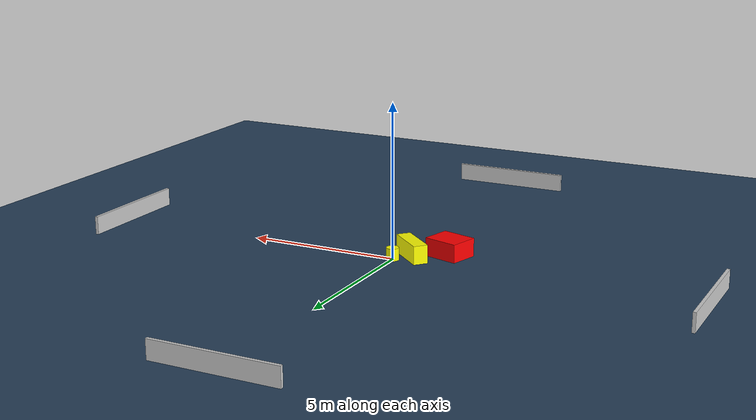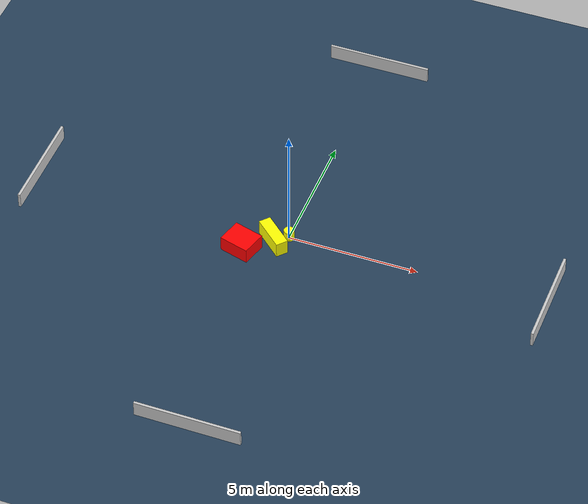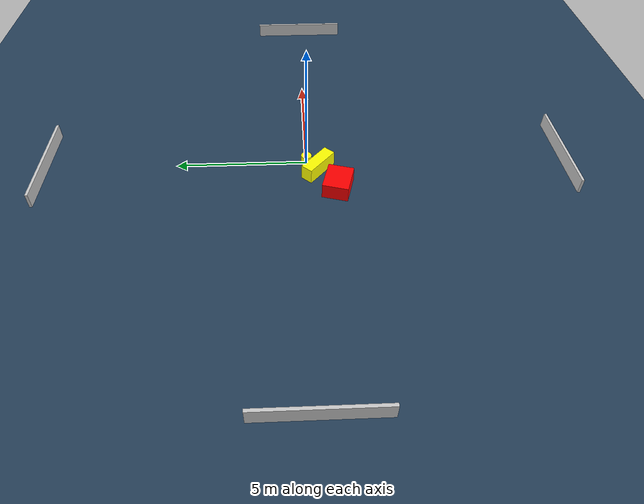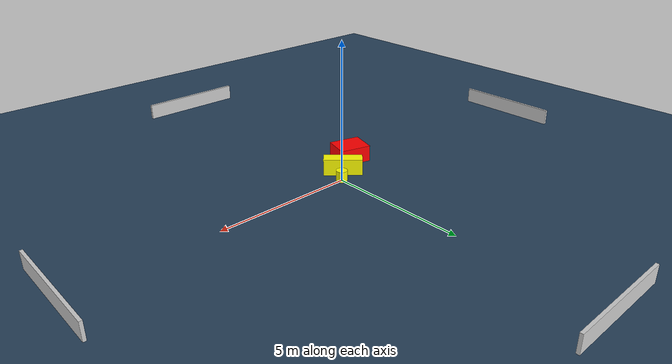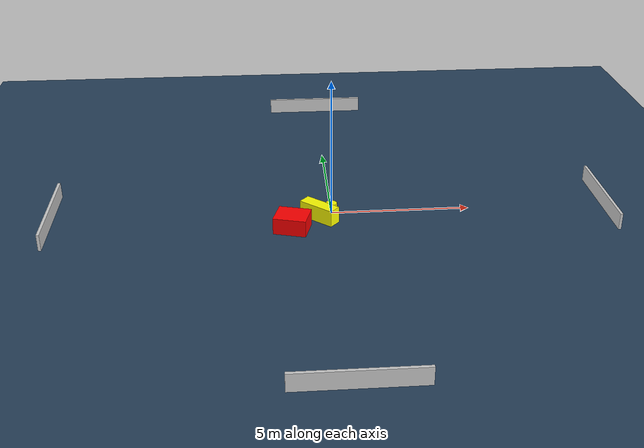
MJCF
<?xml version="1.0" ?>
<mujoco model="generated_environment">
  <option timestep="0.01" integrator="RK4" cone="elliptic"/>
  <default>
    <geom density="1"/>
  </default>
  <asset>
    <texture builtin="gradient" height="3072" name="skybox" rgb1="0.3 0.5 0.7" rgb2="0 0 0" type="skybox" width="512"/>
    <texture builtin="checker" height="300" name="groundplane" rgb1="0.2 0.3 0.4" rgb2="0.1 0.2 0.3" type="2d" width="300"/>
    <material name="groundplane" reflectance="0.2" texrepeat="5 5" texture="groundplane"/>
  </asset>
  <worldbody>
    <light dir="0 0 -1" directional="true" pos="0 0 1.5"/>
    <geom condim="3" friction="0.5 0.005 0.001" material="groundplane" name="floor" pos="0 0 0" size="0 0 0.05" type="plane"/>
    <body name="walls">
      <geom name="wall_1" condim="4" pos="-10.0 0.0 0.3" rgba="0.800000011920929 0.800000011920929 0.800000011920929 1.0" size="0.05 2.0 0.3" type="box"/>
      <geom name="wall_2" condim="4" pos="10.0 0.0 0.3" rgba="0.800000011920929 0.800000011920929 0.800000011920929 1.0" size="0.05 2.0 0.3" type="box"/>
      <geom name="wall_3" condim="4" pos="0.0 -10.0 0.3" rgba="0.800000011920929 0.800000011920929 0.800000011920929 1.0" size="2.0 0.05 0.3" type="box"/>
      <geom name="wall_4" condim="4" pos="0.0 10.0 0.3" rgba="0.800000011920929 0.800000011920929 0.800000011920929 1.0" size="2.0 0.05 0.3" type="box"/>
    </body>
    <body name="robot">
      <joint name="joint_x" type="slide" pos="0 0 0" axis="1 0 0"/>
      <joint name="joint_y" type="slide" pos="0 0 0" axis="0 1 0"/>
      <geom name="robot" type="cylinder" pos="0.0 0.0 0.2" size="0.2 0.2 0.0" mass="5.0" friction="1.0 0.005 0.0001" condim="4" rgba="1.0 1.0 0.0 1.0"/>
    </body>
    <body name="obstacle_1_movable">
      <geom name="obstacle_1_movable" condim="4" pos="-0.4597610564536131 -0.43250284827685204 0.3" euler="0 0 138.34884389376387" friction="0.0 0.005 0.001" rgba="1.0 1.0 0.0 1.0" size="0.6973831653535822 0.23344332197153259 0.3" type="box" mass="0.1"/>
      <joint type="free"/>
    </body>
    <body name="obstacle_2_static">
      <geom name="obstacle_2_static" condim="4" pos="-1.4518312851509325 -1.1198158493977 0.3" euler="0 0 74.3205083244831" friction="0.0 0.005 0.001" rgba="1.0 0.0 0.0 1.0" size="0.48475062176346023 0.584760321939508 0.3" type="box"/>
    </body>
  </worldbody>
  <actuator>
    <motor name="actuator_x" joint="joint_x" gear="1" ctrlrange="-1 1"/>
    <motor name="actuator_y" joint="joint_y" gear="1" ctrlrange="-1 1"/>
  </actuator>
</mujoco>
